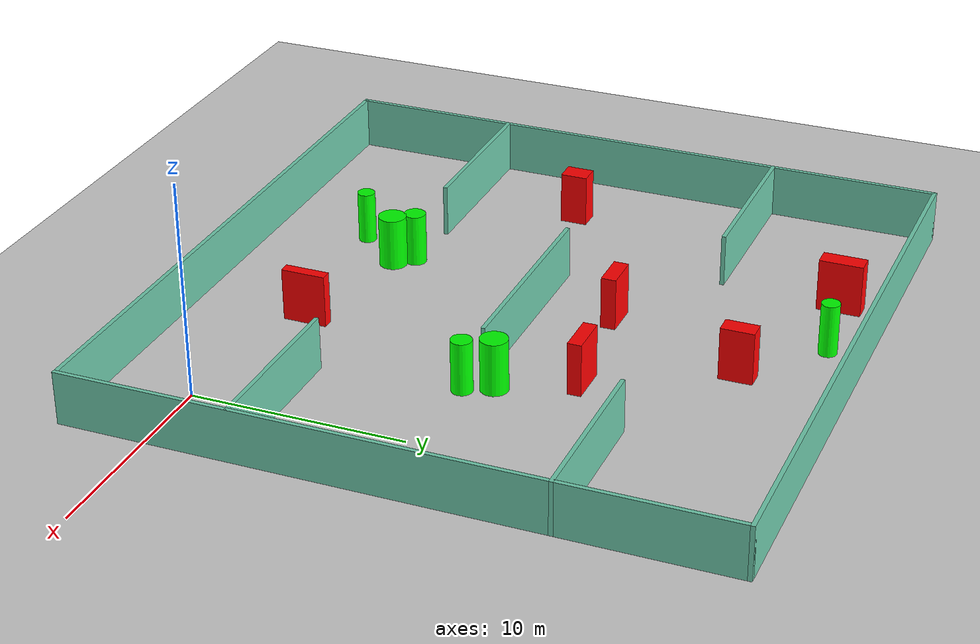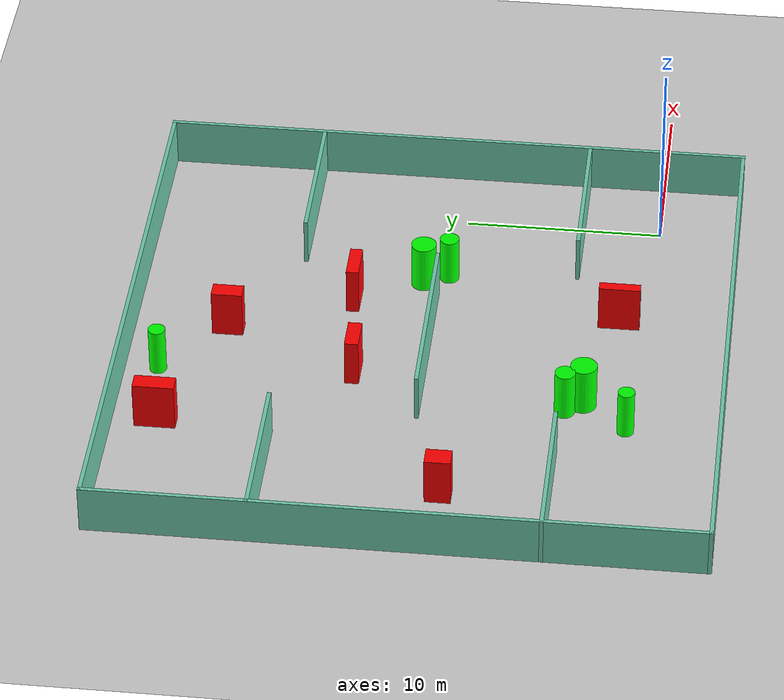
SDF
<sdf version="1.7">
 <world name="default">
  <light name="sun" type="directional">
   <pose>0 0 10 0 -0 0</pose>
   <diffuse>0.8 0.8 0.8 1</diffuse>
   <specular>0.2 0.2 0.2 1</specular>
   <attenuation>
    <range>1000</range>
    <constant>0.9</constant>
    <linear>0.01</linear>
    <quadratic>0.001</quadratic>
   </attenuation>
   <direction>-0.5 0.1 -0.9</direction>
   <spot><inner_angle>0</inner_angle><outer_angle>0</outer_angle><falloff>0</falloff></spot>
  </light>
  <model name="ground_plane">
   <static>1</static>
   <link name="link">
    <collision name="collision">
     <geometry><plane><normal>0 0 1</normal><size>100 100</size></plane></geometry>
     <surface>
      <contact><collide_bitmask>65535</collide_bitmask></contact>
      <friction><ode><mu>100</mu><mu2>50</mu2></ode></friction>
     </surface>
    </collision>
    <visual name="visual">
     <cast_shadows>0</cast_shadows>
     <geometry><plane><normal>0 0 1</normal><size>100 100</size></plane></geometry>
     <material>
      <script><uri>file://media/materials/scripts/gazebo.material</uri><name>Gazebo/Grey</name></script>
     </material>
    </visual>
   </link>
  </model>
  <gravity>0 0 -9.8</gravity>
  <magnetic_field>6e-06 2.3e-05 -4.2e-05</magnetic_field>
  <atmosphere type="adiabatic"/>
  <physics type="ode">
   <max_step_size>0.001</max_step_size>
   <real_time_factor>1</real_time_factor>
   <real_time_update_rate>1000</real_time_update_rate>
  </physics>
  <scene><ambient>0.4 0.4 0.4 1</ambient><background>0.7 0.7 0.7 1</background><shadows>1</shadows></scene>
  <spherical_coordinates>
   <surface_model>EARTH_WGS84</surface_model>
   <latitude_deg>0</latitude_deg>
   <longitude_deg>0</longitude_deg>
   <elevation>0</elevation>
   <heading_deg>0</heading_deg>
  </spherical_coordinates>
  <model name="my_base_walls">
   <link name="Wall_10">
    <collision name="Wall_10_Collision">
     <geometry><box><size>8.2 0.2 2.5</size></box></geometry>
     <pose>0 0 1.25 0 -0 0</pose>
    </collision>
    <visual name="Wall_10_Visual">
     <pose>0 0 1.25 0 -0 0</pose>
     <geometry><box><size>8.2 0.2 2.5</size></box></geometry>
     <material>
      <script><uri>file://media/materials/scripts/gazebo.material</uri><name>Gazebo/Grey</name></script>
      <ambient>0.435294 0.796078 0.67451 1</ambient>
     </material>
     <meta><layer>0</layer></meta>
    </visual>
    <pose>-11 -7 0 0 -0 0</pose>
   </link>
   <link name="Wall_12">
    <collision name="Wall_12_Collision">
     <geometry><box><size>8.2 0.2 2.5</size></box></geometry>
     <pose>0 0 1.25 0 -0 0</pose>
    </collision>
    <visual name="Wall_12_Visual">
     <pose>0 0 1.25 0 -0 0</pose>
     <geometry><box><size>8.2 0.2 2.5</size></box></geometry>
     <material>
      <script><uri>file://media/materials/scripts/gazebo.material</uri><name>Gazebo/Grey</name></script>
      <ambient>0.435294 0.796078 0.67451 1</ambient>
     </material>
     <meta><layer>0</layer></meta>
    </visual>
    <pose>-11 7 0 0 -0 0</pose>
   </link>
   <link name="Wall_14">
    <collision name="Wall_14_Collision">
     <geometry><box><size>8.2 0.2 2.5</size></box></geometry>
     <pose>0 0 1.25 0 -0 0</pose>
    </collision>
    <visual name="Wall_14_Visual">
     <pose>0 0 1.25 0 -0 0</pose>
     <geometry><box><size>8.2 0.2 2.5</size></box></geometry>
     <material>
      <script><uri>file://media/materials/scripts/gazebo.material</uri><name>Gazebo/Grey</name></script>
      <ambient>0.435294 0.796078 0.67451 1</ambient>
     </material>
     <meta><layer>0</layer></meta>
    </visual>
    <pose>11 7 0 0 -0 3.14159</pose>
   </link>
   <link name="Wall_16">
    <collision name="Wall_16_Collision">
     <geometry><box><size>10.2 0.2 2.5</size></box></geometry>
     <pose>0 0 1.25 0 -0 0</pose>
    </collision>
    <visual name="Wall_16_Visual">
     <pose>0 0 1.25 0 -0 0</pose>
     <geometry><box><size>10.2 0.2 2.5</size></box></geometry>
     <material>
      <script><uri>file://media/materials/scripts/gazebo.material</uri><name>Gazebo/Grey</name></script>
      <ambient>0.435294 0.796078 0.67451 1</ambient>
     </material>
     <meta><layer>0</layer></meta>
    </visual>
    <pose>0 0 0 0 -0 3.14159</pose>
   </link>
   <link name="Wall_2">
    <collision name="Wall_2_Collision">
     <geometry><box><size>30.2 0.2 2.5</size></box></geometry>
     <pose>0 0 1.25 0 -0 0</pose>
    </collision>
    <visual name="Wall_2_Visual">
     <pose>0 0 1.25 0 -0 0</pose>
     <geometry><box><size>30.2 0.2 2.5</size></box></geometry>
     <material>
      <script><uri>file://media/materials/scripts/gazebo.material</uri><name>Gazebo/Grey</name></script>
      <ambient>0.435294 0.796078 0.67451 1</ambient>
     </material>
     <meta><layer>0</layer></meta>
    </visual>
    <pose>0 -15 0 0 -0 3.14159</pose>
   </link>
   <link name="Wall_3">
    <collision name="Wall_3_Collision">
     <geometry><box><size>30.2 0.2 2.5</size></box></geometry>
     <pose>0 0 1.25 0 -0 0</pose>
    </collision>
    <visual name="Wall_3_Visual">
     <pose>0 0 1.25 0 -0 0</pose>
     <geometry><box><size>30.2 0.2 2.5</size></box></geometry>
     <material>
      <script><uri>file://media/materials/scripts/gazebo.material</uri><name>Gazebo/Grey</name></script>
      <ambient>0.435294 0.796078 0.67451 1</ambient>
     </material>
     <meta><layer>0</layer></meta>
    </visual>
    <pose>-15 0 0 0 -0 1.5708</pose>
   </link>
   <link name="Wall_4">
    <collision name="Wall_4_Collision">
     <geometry><box><size>30.2 0.2 2.5</size></box></geometry>
     <pose>0 0 1.25 0 -0 0</pose>
    </collision>
    <visual name="Wall_4_Visual">
     <pose>0 0 1.25 0 -0 0</pose>
     <geometry><box><size>30.2 0.2 2.5</size></box></geometry>
     <material>
      <script><uri>file://media/materials/scripts/gazebo.material</uri><name>Gazebo/Grey</name></script>
      <ambient>0.435294 0.796078 0.67451 1</ambient>
     </material>
     <meta><layer>0</layer></meta>
    </visual>
    <pose>0 15 0 0 -0 0</pose>
   </link>
   <link name="Wall_6">
    <collision name="Wall_6_Collision">
     <geometry><box><size>30.2 0.2 2.5</size></box></geometry>
     <pose>0 0 1.25 0 -0 0</pose>
    </collision>
    <visual name="Wall_6_Visual">
     <pose>0 0 1.25 0 -0 0</pose>
     <geometry><box><size>30.2 0.2 2.5</size></box></geometry>
     <material>
      <script><uri>file://media/materials/scripts/gazebo.material</uri><name>Gazebo/Grey</name></script>
      <ambient>0.435294 0.796078 0.67451 1</ambient>
     </material>
     <meta><layer>0</layer></meta>
    </visual>
    <pose>15 0 0 0 -0 1.5708</pose>
   </link>
   <link name="Wall_8">
    <collision name="Wall_8_Collision">
     <geometry><box><size>8.2 0.2 2.5</size></box></geometry>
     <pose>0 0 1.25 0 -0 0</pose>
    </collision>
    <visual name="Wall_8_Visual">
     <pose>0 0 1.25 0 -0 0</pose>
     <geometry><box><size>8.2 0.2 2.5</size></box></geometry>
     <material>
      <script><uri>file://media/materials/scripts/gazebo.material</uri><name>Gazebo/Grey</name></script>
      <ambient>0.435294 0.796078 0.67451 1</ambient>
     </material>
     <meta><layer>0</layer></meta>
    </visual>
    <pose>11 -7 0 0 -0 3.14159</pose>
   </link>
   <static>1</static>
   <pose>-11 11 0 0 -0 0</pose>
  </model>
  <model name="cylinder1">
   <static>1</static>
   <link name="link">
    <inertial>
     <mass>1</mass>
     <inertia><ixx>0.5</ixx><ixy>0</ixy><ixz>0</ixz><iyy>0.5</iyy><iyz>0</iyz><izz>1</izz></inertia>
    </inertial>
    <collision name="collision">
     <geometry><cylinder><radius>0.6650257757210342</radius><length>2.5</length></cylinder></geometry>
    </collision>
    <visual name="visual">
     <geometry><cylinder><radius>0.6650257757210342</radius><length>2.5</length></cylinder></geometry>
     <material>
      <ambient>0 1 0 1</ambient>
      <diffuse>0 1 0 1</diffuse>
      <specular>0.1 0.1 0.1 1</specular>
      <emissive>0 0 0 0</emissive>
     </material>
    </visual>
   </link>
   <pose>-14.201703121303066 2.91616925077503 1.25 0 0 0</pose>
  </model>
  <model name="cylinder2">
   <static>1</static>
   <link name="link">
    <inertial>
     <mass>1</mass>
     <inertia><ixx>0.5</ixx><ixy>0</ixy><ixz>0</ixz><iyy>0.5</iyy><iyz>0</iyz><izz>1</izz></inertia>
    </inertial>
    <collision name="collision">
     <geometry><cylinder><radius>0.4907882909937916</radius><length>2.5</length></cylinder></geometry>
    </collision>
    <visual name="visual">
     <geometry><cylinder><radius>0.4907882909937916</radius><length>2.5</length></cylinder></geometry>
     <material>
      <ambient>0 1 0 1</ambient>
      <diffuse>0 1 0 1</diffuse>
      <specular>0.1 0.1 0.1 1</specular>
      <emissive>0 0 0 0</emissive>
     </material>
    </visual>
   </link>
   <pose>-4.662268097787006 10.53052533055898 1.25 0 0 0</pose>
  </model>
  <model name="cylinder3">
   <static>1</static>
   <link name="link">
    <inertial>
     <mass>1</mass>
     <inertia><ixx>0.5</ixx><ixy>0</ixy><ixz>0</ixz><iyy>0.5</iyy><iyz>0</iyz><izz>1</izz></inertia>
    </inertial>
    <collision name="collision">
     <geometry><cylinder><radius>0.638221530297815</radius><length>2.5</length></cylinder></geometry>
    </collision>
    <visual name="visual">
     <geometry><cylinder><radius>0.638221530297815</radius><length>2.5</length></cylinder></geometry>
     <material>
      <ambient>0 1 0 1</ambient>
      <diffuse>0 1 0 1</diffuse>
      <specular>0.1 0.1 0.1 1</specular>
      <emissive>0 0 0 0</emissive>
     </material>
    </visual>
   </link>
   <pose>-5.261728930896361 11.780977934143301 1.25 0 0 0</pose>
  </model>
  <model name="cylinder4">
   <static>1</static>
   <link name="link">
    <inertial>
     <mass>1</mass>
     <inertia><ixx>0.5</ixx><ixy>0</ixy><ixz>0</ixz><iyy>0.5</iyy><iyz>0</iyz><izz>1</izz></inertia>
    </inertial>
    <collision name="collision">
     <geometry><cylinder><radius>0.4286074573274286</radius><length>2.5</length></cylinder></geometry>
    </collision>
    <visual name="visual">
     <geometry><cylinder><radius>0.4286074573274286</radius><length>2.5</length></cylinder></geometry>
     <material>
      <ambient>0 1 0 1</ambient>
      <diffuse>0 1 0 1</diffuse>
      <specular>0.1 0.1 0.1 1</specular>
      <emissive>0 0 0 0</emissive>
     </material>
    </visual>
   </link>
   <pose>-13.575223417453204 24.23783691119339 1.25 0 0 0</pose>
  </model>
  <model name="cylinder5">
   <static>1</static>
   <link name="link">
    <inertial>
     <mass>1</mass>
     <inertia><ixx>0.5</ixx><ixy>0</ixy><ixz>0</ixz><iyy>0.5</iyy><iyz>0</iyz><izz>1</izz></inertia>
    </inertial>
    <collision name="collision">
     <geometry><cylinder><radius>0.4203592779109032</radius><length>2.5</length></cylinder></geometry>
    </collision>
    <visual name="visual">
     <geometry><cylinder><radius>0.4203592779109032</radius><length>2.5</length></cylinder></geometry>
     <material>
      <ambient>0 1 0 1</ambient>
      <diffuse>0 1 0 1</diffuse>
      <specular>0.1 0.1 0.1 1</specular>
      <emissive>0 0 0 0</emissive>
     </material>
    </visual>
   </link>
   <pose>-16.042749930632652 0.6964446068912804 1.25 0 0 0</pose>
  </model>
  <model name="cylinder6">
   <static>1</static>
   <link name="link">
    <inertial>
     <mass>1</mass>
     <inertia><ixx>0.5</ixx><ixy>0</ixy><ixz>0</ixz><iyy>0.5</iyy><iyz>0</iyz><izz>1</izz></inertia>
    </inertial>
    <collision name="collision">
     <geometry><cylinder><radius>0.5144544768304884</radius><length>2.5</length></cylinder></geometry>
    </collision>
    <visual name="visual">
     <geometry><cylinder><radius>0.5144544768304884</radius><length>2.5</length></cylinder></geometry>
     <material>
      <ambient>0 1 0 1</ambient>
      <diffuse>0 1 0 1</diffuse>
      <specular>0.1 0.1 0.1 1</specular>
      <emissive>0 0 0 0</emissive>
     </material>
    </visual>
   </link>
   <pose>-14.844919645808815 3.7881715279220742 1.25 0 0 0</pose>
  </model>
  <model name="box1">
   <static>1</static>
   <link name="link">
    <inertial>
     <mass>1</mass>
     <inertia><ixx>0.083</ixx><ixy>0</ixy><ixz>0</ixz><iyy>0.083</iyy><iyz>0</iyz><izz>0.083</izz></inertia>
    </inertial>
    <collision name="collision">
     <geometry><box><size>1.7254560271002601 0.6998802744333403 2.5</size></box></geometry>
    </collision>
    <visual name="visual">
     <geometry><box><size>1.7254560271002601 0.6998802744333403 2.5</size></box></geometry>
     <material>
      <ambient>1 0 0 1</ambient>
      <diffuse>1 0 0 1</diffuse>
      <specular>0.1 0.1 0.1 1</specular>
      <emissive>0 0 0 0</emissive>
     </material>
    </visual>
    <sensor name="my_contact" type="contact">
     <contact><collision>box_collision</collision><topic>__default_topic__</topic></contact>
    </sensor>
   </link>
   <pose>-12.885557601744193 14.48744822655723 1.25 0 0 0</pose>
  </model>
  <model name="box2">
   <static>1</static>
   <link name="link">
    <inertial>
     <mass>1</mass>
     <inertia><ixx>0.083</ixx><ixy>0</ixy><ixz>0</ixz><iyy>0.083</iyy><iyz>0</iyz><izz>0.083</izz></inertia>
    </inertial>
    <collision name="collision">
     <geometry><box><size>0.8510677395674794 1.5578957232939694 2.5</size></box></geometry>
    </collision>
    <visual name="visual">
     <geometry><box><size>0.8510677395674794 1.5578957232939694 2.5</size></box></geometry>
     <material>
      <ambient>1 0 0 1</ambient>
      <diffuse>1 0 0 1</diffuse>
      <specular>0.1 0.1 0.1 1</specular>
      <emissive>0 0 0 0</emissive>
     </material>
    </visual>
    <sensor name="my_contact" type="contact">
     <contact><collision>box_collision</collision><topic>__default_topic__</topic></contact>
    </sensor>
   </link>
   <pose>-10.076735852698011 21.181858381605593 1.25 0 0 0</pose>
  </model>
  <model name="box3">
   <static>1</static>
   <link name="link">
    <inertial>
     <mass>1</mass>
     <inertia><ixx>0.083</ixx><ixy>0</ixy><ixz>0</ixz><iyy>0.083</iyy><iyz>0</iyz><izz>0.083</izz></inertia>
    </inertial>
    <collision name="collision">
     <geometry><box><size>0.5205009265832216 2.0908752525767738 2.5</size></box></geometry>
    </collision>
    <visual name="visual">
     <geometry><box><size>0.5205009265832216 2.0908752525767738 2.5</size></box></geometry>
     <material>
      <ambient>1 0 0 1</ambient>
      <diffuse>1 0 0 1</diffuse>
      <specular>0.1 0.1 0.1 1</specular>
      <emissive>0 0 0 0</emissive>
     </material>
    </visual>
    <sensor name="my_contact" type="contact">
     <contact><collision>box_collision</collision><topic>__default_topic__</topic></contact>
    </sensor>
   </link>
   <pose>-7.726929734151774 1.6052422864361198 1.25 0 0 0</pose>
  </model>
  <model name="box4">
   <static>1</static>
   <link name="link">
    <inertial>
     <mass>1</mass>
     <inertia><ixx>0.083</ixx><ixy>0</ixy><ixz>0</ixz><iyy>0.083</iyy><iyz>0</iyz><izz>0.083</izz></inertia>
    </inertial>
    <collision name="collision">
     <geometry><box><size>0.8614898321753508 2.0575290209073973 2.5</size></box></geometry>
    </collision>
    <visual name="visual">
     <geometry><box><size>0.8614898321753508 2.0575290209073973 2.5</size></box></geometry>
     <material>
      <ambient>1 0 0 1</ambient>
      <diffuse>1 0 0 1</diffuse>
      <specular>0.1 0.1 0.1 1</specular>
      <emissive>0 0 0 0</emissive>
     </material>
    </visual>
    <sensor name="my_contact" type="contact">
     <contact><collision>box_collision</collision><topic>__default_topic__</topic></contact>
    </sensor>
   </link>
   <pose>-17.70235953466285 23.719199607170033 1.25 0 0 0</pose>
  </model>
  <model name="box5">
   <static>1</static>
   <link name="link">
    <inertial>
     <mass>1</mass>
     <inertia><ixx>0.083</ixx><ixy>0</ixy><ixz>0</ixz><iyy>0.083</iyy><iyz>0</iyz><izz>0.083</izz></inertia>
    </inertial>
    <collision name="collision">
     <geometry><box><size>1.9498070133282623 0.6423521680918671 2.5</size></box></geometry>
    </collision>
    <visual name="visual">
     <geometry><box><size>1.9498070133282623 0.6423521680918671 2.5</size></box></geometry>
     <material>
      <ambient>1 0 0 1</ambient>
      <diffuse>1 0 0 1</diffuse>
      <specular>0.1 0.1 0.1 1</specular>
      <emissive>0 0 0 0</emissive>
     </material>
    </visual>
    <sensor name="my_contact" type="contact">
     <contact><collision>box_collision</collision><topic>__default_topic__</topic></contact>
    </sensor>
   </link>
   <pose>-7.004843665487456 15.129164771511117 1.25 0 0 0</pose>
  </model>
  <model name="box6">
   <static>1</static>
   <link name="link">
    <inertial>
     <mass>1</mass>
     <inertia><ixx>0.083</ixx><ixy>0</ixy><ixz>0</ixz><iyy>0.083</iyy><iyz>0</iyz><izz>0.083</izz></inertia>
    </inertial>
    <collision name="collision">
     <geometry><box><size>0.9923245527763657 1.2836260836043913 2.5</size></box></geometry>
    </collision>
    <visual name="visual">
     <geometry><box><size>0.9923245527763657 1.2836260836043913 2.5</size></box></geometry>
     <material>
      <ambient>1 0 0 1</ambient>
      <diffuse>1 0 0 1</diffuse>
      <specular>0.1 0.1 0.1 1</specular>
      <emissive>0 0 0 0</emissive>
     </material>
    </visual>
    <sensor name="my_contact" type="contact">
     <contact><collision>box_collision</collision><topic>__default_topic__</topic></contact>
    </sensor>
   </link>
   <pose>-21.84170498321172 9.315538632488137 1.25 0 0 0</pose>
  </model>
 </world>
</sdf>
